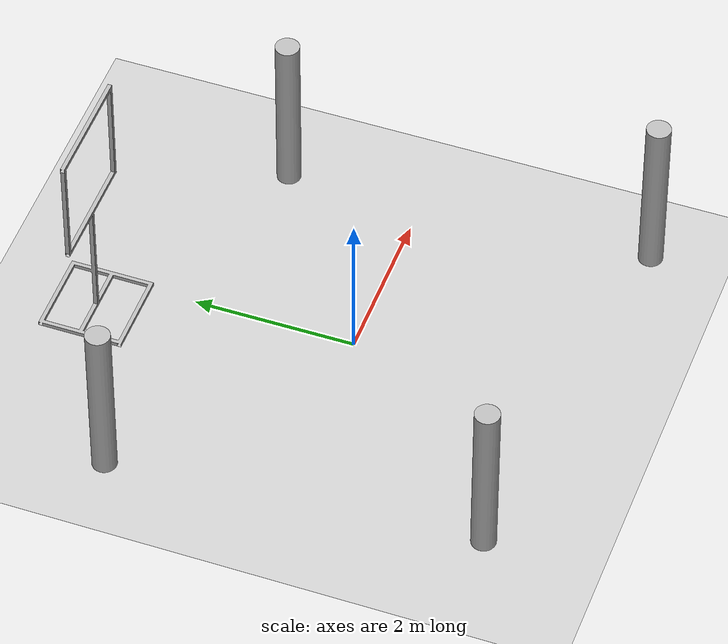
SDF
<sdf version="1.7">
 <world name="default">
  <light name="sun" type="directional">
   <pose>0 0 10 0 -0 0</pose>
   <diffuse>0.8 0.8 0.8 1</diffuse>
   <specular>0.2 0.2 0.2 1</specular>
   <attenuation>
    <range>1000</range>
    <constant>0.9</constant>
    <linear>0.01</linear>
    <quadratic>0.001</quadratic>
   </attenuation>
   <direction>-0.5 0.1 -0.9</direction>
   <spot><inner_angle>0</inner_angle><outer_angle>0</outer_angle><falloff>0</falloff></spot>
  </light>
  <model name="ground_plane">
   <static>1</static>
   <link name="link">
    <collision name="collision">
     <geometry><plane><normal>0 0 1</normal><size>100 100</size></plane></geometry>
     <surface>
      <contact><collide_bitmask>65535</collide_bitmask></contact>
      <friction><ode><mu>100</mu><mu2>50</mu2></ode></friction>
     </surface>
    </collision>
    <visual name="visual">
     <cast_shadows>0</cast_shadows>
     <geometry><plane><normal>0 0 1</normal><size>100 100</size></plane></geometry>
     <material>
      <script><uri>file://media/materials/scripts/gazebo.material</uri><name>Gazebo/Grey</name></script>
     </material>
    </visual>
   </link>
  </model>
  <gravity>0 0 -9.8</gravity>
  <magnetic_field>6e-06 2.3e-05 -4.2e-05</magnetic_field>
  <atmosphere type="adiabatic"/>
  <physics type="ode">
   <max_step_size>0.001</max_step_size>
   <real_time_factor>1</real_time_factor>
   <real_time_update_rate>1000</real_time_update_rate>
  </physics>
  <scene><ambient>0.4 0.4 0.4 1</ambient><background>0.7 0.7 0.7 1</background><shadows>1</shadows></scene>
  <spherical_coordinates>
   <surface_model>EARTH_WGS84</surface_model>
   <latitude_deg>0</latitude_deg>
   <longitude_deg>0</longitude_deg>
   <elevation>0</elevation>
   <heading_deg>0</heading_deg>
  </spherical_coordinates>
  <model name="orange_pole">
   <static>1</static>
   <pose>-2.70283 2.08072 0 0 -0 0</pose>
   <link name="orange_pole">
    <visual name="pole"><geometry><mesh><uri>model://orange_pole/orange_pole.dae</uri></mesh></geometry></visual>
    <collision name="pole_collision">
     <geometry><mesh><uri>model://orange_pole/orange_pole.dae</uri></mesh></geometry>
    </collision>
   </link>
  </model>
  <model name="orange_pole_0">
   <static>1</static>
   <pose>-2.3128 -2.41134 0 0 -0 0</pose>
   <link name="orange_pole">
    <visual name="pole"><geometry><mesh><uri>model://orange_pole/orange_pole.dae</uri></mesh></geometry></visual>
    <collision name="pole_collision">
     <geometry><mesh><uri>model://orange_pole/orange_pole.dae</uri></mesh></geometry>
    </collision>
   </link>
  </model>
  <model name="orange_pole_1">
   <static>1</static>
   <pose>2.5417 -2.86189 0 0 -0 0</pose>
   <link name="orange_pole">
    <visual name="pole"><geometry><mesh><uri>model://orange_pole/orange_pole.dae</uri></mesh></geometry></visual>
    <collision name="pole_collision">
     <geometry><mesh><uri>model://orange_pole/orange_pole.dae</uri></mesh></geometry>
    </collision>
   </link>
  </model>
  <model name="orange_pole_2">
   <static>1</static>
   <pose>2.33834 1.69137 0 0 -0 0</pose>
   <link name="orange_pole">
    <visual name="pole"><geometry><mesh><uri>model://orange_pole/orange_pole.dae</uri></mesh></geometry></visual>
    <collision name="pole_collision">
     <geometry><mesh><uri>model://orange_pole/orange_pole.dae</uri></mesh></geometry>
    </collision>
   </link>
  </model>
  <model name="dronerace_gate_2018">
   <static>1</static>
   <pose>-0.447163 3.09548 0 0 -0 0</pose>
   <link name="dronerace_gate_2018">
    <visual name="gate">
     <geometry><mesh><uri>model://dronerace_gate_2018/normal_gate_2018.dae</uri></mesh></geometry>
    </visual>
    <collision name="gate_collision">
     <geometry><mesh><uri>model://dronerace_gate_2018/normal_gate_2018.dae</uri></mesh></geometry>
    </collision>
   </link>
  </model>
 </world>
</sdf>
